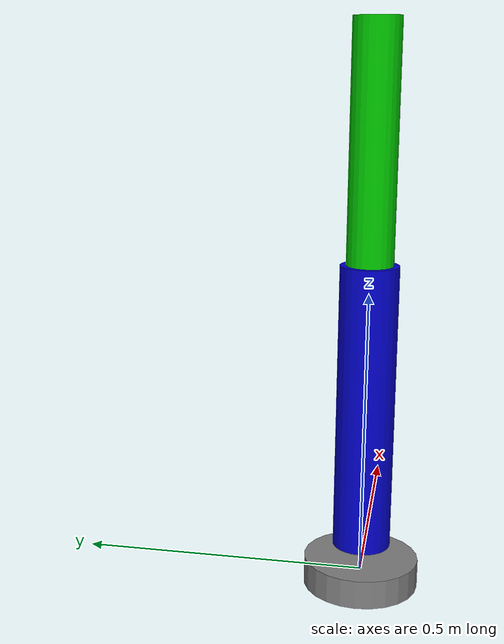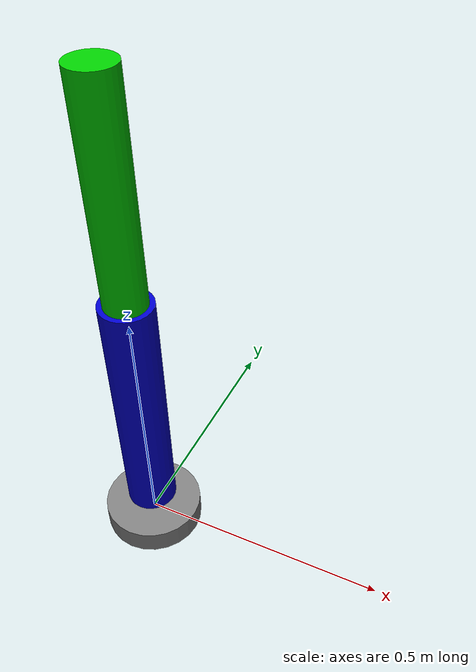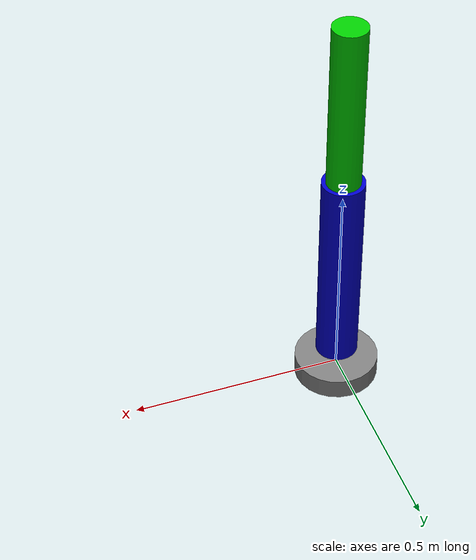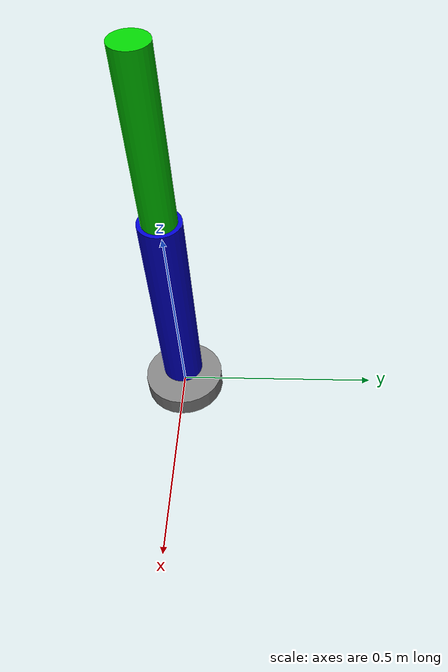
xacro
<?xml version="1.0"?>
<robot xmlns:xacro="http://www.ros.org/wiki/xacro" name="vla_arm">

  <!-- Base Link -->
  <link name="base_link">
    <visual>
      <geometry>
        <cylinder radius="0.1" length="0.05"/>
      </geometry>
      <material name="gray">
        <color rgba="0.5 0.5 0.5 1.0"/>
      </material>
    </visual>
    <collision>
      <geometry>
        <cylinder radius="0.1" length="0.05"/>
      </geometry>
    </collision>
    <inertial>
      <mass value="1.0"/>
      <inertia ixx="0.0025" ixy="0" ixz="0" iyy="0.0025" iyz="0" izz="0.005"/>
    </inertial>
  </link>

  <!-- Joint 1 -->
  <joint name="joint_1" type="revolute">
    <parent link="base_link"/>
    <child link="link_1"/>
    <origin xyz="0 0 0.05" rpy="0 0 0"/>
    <axis xyz="0 0 1"/>
    <limit lower="-3.14" upper="3.14" effort="10.0" velocity="1.0"/>
  </joint>

  <!-- Link 1 -->
  <link name="link_1">
    <visual>
      <origin xyz="0 0 0.25" rpy="0 0 0"/>
      <geometry>
        <cylinder radius="0.05" length="0.5"/>
      </geometry>
      <material name="blue">
        <color rgba="0.0 0.0 0.8 1.0"/>
      </material>
    </visual>
    <collision>
      <origin xyz="0 0 0.25" rpy="0 0 0"/>
      <geometry>
        <cylinder radius="0.05" length="0.5"/>
      </geometry>
    </collision>
    <inertial>
      <origin xyz="0 0 0.25" rpy="0 0 0"/>
      <mass value="1.0"/>
      <inertia ixx="0.02" ixy="0" ixz="0" iyy="0.02" iyz="0" izz="0.001"/>
    </inertial>
  </link>

  <!-- Joint 2 -->
  <joint name="joint_2" type="revolute">
    <parent link="link_1"/>
    <child link="link_2"/>
    <origin xyz="0 0 0.5" rpy="0 0 0"/>
    <axis xyz="0 1 0"/>
    <limit lower="-1.57" upper="1.57" effort="10.0" velocity="1.0"/>
  </joint>

  <!-- Link 2 -->
  <link name="link_2">
    <visual>
      <origin xyz="0 0 0.2" rpy="0 0 0"/>
      <geometry>
        <cylinder radius="0.04" length="0.4"/>
      </geometry>
      <material name="green">
        <color rgba="0.0 0.8 0.0 1.0"/>
      </material>
    </visual>
    <collision>
      <origin xyz="0 0 0.2" rpy="0 0 0"/>
      <geometry>
        <cylinder radius="0.04" length="0.4"/>
      </geometry>
    </collision>
    <inertial>
      <origin xyz="0 0 0.2" rpy="0 0 0"/>
      <mass value="0.8"/>
      <inertia ixx="0.01" ixy="0" ixz="0" iyy="0.01" iyz="0" izz="0.001"/>
    </inertial>
  </link>

  <!-- End Effector -->
  <link name="end_effector"/>
  <joint name="ee_joint" type="fixed">
    <parent link="link_2"/>
    <child link="end_effector"/>
    <origin xyz="0 0 0.4" rpy="0 0 0"/>
  </joint>

  <!-- ros2_control integration for Gazebo -->
  <ros2_control name="GazeboSimSystem" type="system">
    <hardware>
      <plugin>gz_ros2_control/GazeboSimSystem</plugin>
    </hardware>
    <joint name="joint_1">
      <command_interface name="position">
        <param name="min">-3.14</param>
        <param name="max">3.14</param>
      </command_interface>
      <state_interface name="position"/>
      <state_interface name="velocity"/>
    </joint>
    <joint name="joint_2">
      <command_interface name="position">
        <param name="min">-1.57</param>
        <param name="max">1.57</param>
      </command_interface>
      <state_interface name="position"/>
      <state_interface name="velocity"/>
    </joint>
  </ros2_control>

  <gazebo>
    <plugin filename="gz_ros2_control-system" name="gz_ros2_control::GazeboSimSystem">
      <parameters>$(find vla_description)/config/ros2_controllers.yaml</parameters>
    </plugin>
  </gazebo>

</robot>
